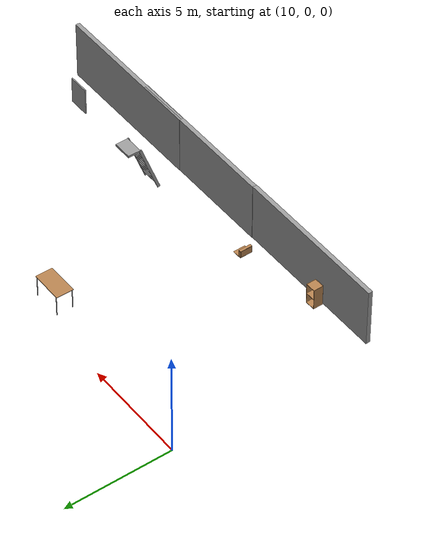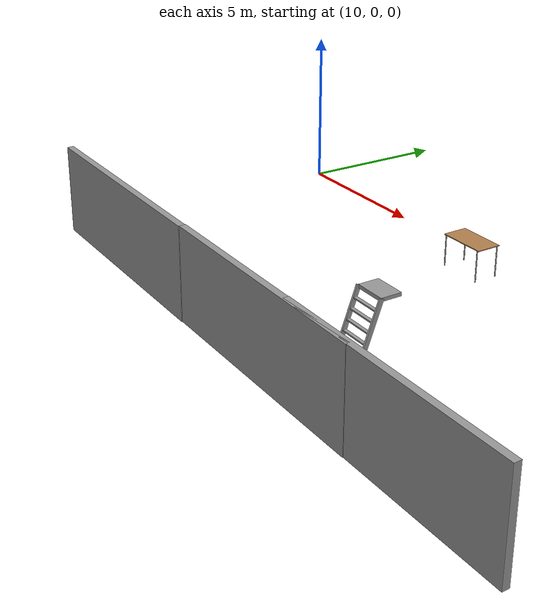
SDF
<sdf version="1.6">
 <world name="factory">
  <model name="ladder_70deg_0rails">
   <static>1</static>
   <link name="step0">
    <pose>0 0.097059 0.266667 0 -0 0</pose>
    <inertial>
     <mass>9.75482</mass>
     <inertia>
      <ixx>0.00957124</ixx>
      <iyy>0.65963</iyy>
      <izz>0.666842</izz>
      <ixy>0</ixy>
      <ixz>0</ixz>
      <iyz>0</iyz>
     </inertia>
    </inertial>
    <collision name="collision"><geometry><box><size>0.9 0.1016 0.0381</size></box></geometry></collision>
    <visual name="visual">
     <geometry><box><size>0.9 0.1016 0.0381</size></box></geometry>
     <material>
      <script><uri>file://media/materials/scripts/gazebo.material</uri><name>Gazebo/Grey</name></script>
     </material>
    </visual>
   </link>
   <link name="step1">
    <pose>0 0.194117 0.533333 0 -0 0</pose>
    <inertial>
     <mass>9.75482</mass>
     <inertia>
      <ixx>0.00957124</ixx>
      <iyy>0.65963</iyy>
      <izz>0.666842</izz>
      <ixy>0</ixy>
      <ixz>0</ixz>
      <iyz>0</iyz>
     </inertia>
    </inertial>
    <collision name="collision"><geometry><box><size>0.9 0.1016 0.0381</size></box></geometry></collision>
    <visual name="visual">
     <geometry><box><size>0.9 0.1016 0.0381</size></box></geometry>
     <material>
      <script><uri>file://media/materials/scripts/gazebo.material</uri><name>Gazebo/Grey</name></script>
     </material>
    </visual>
   </link>
   <link name="step2">
    <pose>0 0.291176 0.8 0 -0 0</pose>
    <inertial>
     <mass>9.75482</mass>
     <inertia>
      <ixx>0.00957124</ixx>
      <iyy>0.65963</iyy>
      <izz>0.666842</izz>
      <ixy>0</ixy>
      <ixz>0</ixz>
      <iyz>0</iyz>
     </inertia>
    </inertial>
    <collision name="collision"><geometry><box><size>0.9 0.1016 0.0381</size></box></geometry></collision>
    <visual name="visual">
     <geometry><box><size>0.9 0.1016 0.0381</size></box></geometry>
     <material>
      <script><uri>file://media/materials/scripts/gazebo.material</uri><name>Gazebo/Grey</name></script>
     </material>
    </visual>
   </link>
   <link name="step3">
    <pose>0 0.388235 1.06667 0 -0 0</pose>
    <inertial>
     <mass>9.75482</mass>
     <inertia>
      <ixx>0.00957124</ixx>
      <iyy>0.65963</iyy>
      <izz>0.666842</izz>
      <ixy>0</ixy>
      <ixz>0</ixz>
      <iyz>0</iyz>
     </inertia>
    </inertial>
    <collision name="collision"><geometry><box><size>0.9 0.1016 0.0381</size></box></geometry></collision>
    <visual name="visual">
     <geometry><box><size>0.9 0.1016 0.0381</size></box></geometry>
     <material>
      <script><uri>file://media/materials/scripts/gazebo.material</uri><name>Gazebo/Grey</name></script>
     </material>
    </visual>
   </link>
   <link name="step4">
    <pose>0 0.485294 1.33333 0 -0 0</pose>
    <inertial>
     <mass>9.75482</mass>
     <inertia>
      <ixx>0.00957124</ixx>
      <iyy>0.65963</iyy>
      <izz>0.666842</izz>
      <ixy>0</ixy>
      <ixz>0</ixz>
      <iyz>0</iyz>
     </inertia>
    </inertial>
    <collision name="collision"><geometry><box><size>0.9 0.1016 0.0381</size></box></geometry></collision>
    <visual name="visual">
     <geometry><box><size>0.9 0.1016 0.0381</size></box></geometry>
     <material>
      <script><uri>file://media/materials/scripts/gazebo.material</uri><name>Gazebo/Grey</name></script>
     </material>
    </visual>
   </link>
   <link name="step5">
    <pose>0 0.582352 1.6 0 -0 0</pose>
    <inertial>
     <mass>9.75482</mass>
     <inertia>
      <ixx>0.00957124</ixx>
      <iyy>0.65963</iyy>
      <izz>0.666842</izz>
      <ixy>0</ixy>
      <ixz>0</ixz>
      <iyz>0</iyz>
     </inertia>
    </inertial>
    <collision name="collision"><geometry><box><size>0.9 0.1016 0.0381</size></box></geometry></collision>
    <visual name="visual">
     <geometry><box><size>0.9 0.1016 0.0381</size></box></geometry>
     <material>
      <script><uri>file://media/materials/scripts/gazebo.material</uri><name>Gazebo/Grey</name></script>
     </material>
    </visual>
   </link>
   <link name="step6">
    <pose>0 0.679411 1.86667 0 -0 0</pose>
    <inertial>
     <mass>9.75482</mass>
     <inertia>
      <ixx>0.00957124</ixx>
      <iyy>0.65963</iyy>
      <izz>0.666842</izz>
      <ixy>0</ixy>
      <ixz>0</ixz>
      <iyz>0</iyz>
     </inertia>
    </inertial>
    <collision name="collision"><geometry><box><size>0.9 0.1016 0.0381</size></box></geometry></collision>
    <visual name="visual">
     <geometry><box><size>0.9 0.1016 0.0381</size></box></geometry>
     <material>
      <script><uri>file://media/materials/scripts/gazebo.material</uri><name>Gazebo/Grey</name></script>
     </material>
    </visual>
   </link>
   <link name="step7">
    <pose>0 0.77647 2.13333 0 -0 0</pose>
    <inertial>
     <mass>9.75482</mass>
     <inertia>
      <ixx>0.00957124</ixx>
      <iyy>0.65963</iyy>
      <izz>0.666842</izz>
      <ixy>0</ixy>
      <ixz>0</ixz>
      <iyz>0</iyz>
     </inertia>
    </inertial>
    <collision name="collision"><geometry><box><size>0.9 0.1016 0.0381</size></box></geometry></collision>
    <visual name="visual">
     <geometry><box><size>0.9 0.1016 0.0381</size></box></geometry>
     <material>
      <script><uri>file://media/materials/scripts/gazebo.material</uri><name>Gazebo/Grey</name></script>
     </material>
    </visual>
   </link>
   <link name="landing">
    <pose>0 1.17353 2.4 0 -0 0</pose>
    <inertial>
     <mass>57.6072</mass>
     <inertia><ixx>1.73518</ixx><iyy>3.89545</iyy><izz>5.6167</izz><ixy>0</ixy><ixz>0</ixz><iyz>0</iyz></inertia>
    </inertial>
    <collision name="collision"><geometry><box><size>0.9 0.6 0.1016</size></box></geometry></collision>
    <visual name="visual">
     <geometry><box><size>0.9 0.6 0.1016</size></box></geometry>
     <material>
      <script><uri>file://media/materials/scripts/gazebo.material</uri><name>Gazebo/Grey</name></script>
     </material>
    </visual>
   </link>
   <link name="left_side_wall">
    <pose>-0.45 0.436764 1.2 1.22173 -0 0</pose>
    <collision name="collision"><geometry><box><size>0.0508 2.63403 0.13</size></box></geometry></collision>
    <visual name="visual">
     <geometry><box><size>0.0508 2.63403 0.13</size></box></geometry>
     <material>
      <script><uri>file://media/materials/scripts/gazebo.material</uri><name>Gazebo/Grey</name></script>
     </material>
    </visual>
   </link>
   <link name="right_side_wall">
    <pose>0.45 0.436764 1.2 1.22173 -0 0</pose>
    <collision name="collision"><geometry><box><size>0.0508 2.63403 0.13</size></box></geometry></collision>
    <visual name="visual">
     <geometry><box><size>0.0508 2.63403 0.13</size></box></geometry>
     <material>
      <script><uri>file://media/materials/scripts/gazebo.material</uri><name>Gazebo/Grey</name></script>
     </material>
    </visual>
   </link>
   <pose>22.7475 -8.13571 0 0 -0 0</pose>
  </model>
  <model name="grey_wall_clone_0">
   <static>1</static>
   <link name="link">
    <pose>0 0 1.4 0 -0 0</pose>
    <collision name="collision"><geometry><box><size>7.5 0.2 2.8</size></box></geometry></collision>
    <visual name="visual">
     <cast_shadows>0</cast_shadows>
     <geometry><box><size>7.5 0.2 2.8</size></box></geometry>
     <material>
      <script>
       <uri>model://grey_wall/materials/scripts</uri>
       <uri>model://grey_wall/materials/textures</uri>
       <name>vrc/grey_wall</name>
      </script>
     </material>
    </visual>
   </link>
   <pose>13.8347 -9.52636 0 0 -0 0</pose>
  </model>
  <model name="grey_wall_clone_1">
   <static>1</static>
   <link name="link">
    <pose>0 0 1.4 0 -0 0</pose>
    <collision name="collision"><geometry><box><size>7.5 0.2 2.8</size></box></geometry></collision>
    <visual name="visual">
     <cast_shadows>0</cast_shadows>
     <geometry><box><size>7.5 0.2 2.8</size></box></geometry>
     <material>
      <script>
       <uri>model://grey_wall/materials/scripts</uri>
       <uri>model://grey_wall/materials/textures</uri>
       <name>vrc/grey_wall</name>
      </script>
     </material>
    </visual>
   </link>
   <pose>21.3028 -9.50574 0 0 -0 0</pose>
  </model>
  <model name="grey_wall_clone_2">
   <static>1</static>
   <link name="link">
    <pose>0 0 1.4 0 -0 0</pose>
    <collision name="collision"><geometry><box><size>7.5 0.2 2.8</size></box></geometry></collision>
    <visual name="visual">
     <cast_shadows>0</cast_shadows>
     <geometry><box><size>7.5 0.2 2.8</size></box></geometry>
     <material>
      <script>
       <uri>model://grey_wall/materials/scripts</uri>
       <uri>model://grey_wall/materials/textures</uri>
       <name>vrc/grey_wall</name>
      </script>
     </material>
    </visual>
   </link>
   <pose>26.2939 -9.49059 0 0 -0 0</pose>
  </model>
  <model name="unit_box">
   <pose>28.3607 -8.33661 0.535136 2e-06 4e-06 0.000125</pose>
   <link name="link">
    <inertial>
     <mass>1</mass>
     <inertia>
      <ixx>0.166667</ixx>
      <ixy>0</ixy>
      <ixz>0</ixz>
      <iyy>0.166667</iyy>
      <iyz>0</iyz>
      <izz>0.166667</izz>
     </inertia>
    </inertial>
    <collision name="collision"><geometry><box><size>1 0.056403 1.31218</size></box></geometry></collision>
    <visual name="visual">
     <geometry><box><size>1 0.056403 1.31218</size></box></geometry>
     <material>
      <script><name>Gazebo/Grey</name><uri>file://media/materials/scripts/gazebo.material</uri></script>
     </material>
    </visual>
   </link>
  </model>
  <model name="cabinet">
   <static>1</static>
   <link name="cabinet_bottom_plate">
    <inertial>
     <pose>0 0 -1 0 -0 0</pose>
     <inertia><ixx>2.05</ixx><ixy>0</ixy><ixz>0</ixz><iyy>2.05</iyy><iyz>0</iyz><izz>2.05</izz></inertia>
     <mass>25</mass>
    </inertial>
    <collision name="cabinet_bottom_plate_geom">
     <pose>0 0 0.01 0 -0 0</pose>
     <geometry><box><size>0.45 0.45 0.02</size></box></geometry>
    </collision>
    <visual name="cabinet_bottom_plate_geom_visual">
     <pose>0 0 0.01 0 -0 0</pose>
     <geometry><box><size>0.45 0.45 0.02</size></box></geometry>
     <material>
      <script><uri>file://media/materials/scripts/gazebo.material</uri><name>Gazebo/Wood</name></script>
     </material>
    </visual>
    <collision name="cabinet_bottom_plate_geom_cabinet_back_plate">
     <pose>0.235 0 0.51 0 -0 0</pose>
     <geometry><box><size>0.02 0.45 1.02</size></box></geometry>
    </collision>
    <visual name="cabinet_bottom_plate_geom_cabinet_back_plate_visual">
     <pose>0.235 0 0.51 0 -0 0</pose>
     <geometry><box><size>0.02 0.45 1.02</size></box></geometry>
     <material>
      <script><uri>file://media/materials/scripts/gazebo.material</uri><name>Gazebo/Wood</name></script>
     </material>
    </visual>
    <collision name="cabinet_bottom_plate_geom_cabinet_left_plate">
     <pose>0 0.235 0.51 0 -0 0</pose>
     <geometry><box><size>0.45 0.02 1.02</size></box></geometry>
    </collision>
    <visual name="cabinet_bottom_plate_geom_cabinet_left_plate_visual">
     <pose>0 0.235 0.51 0 -0 0</pose>
     <geometry><box><size>0.45 0.02 1.02</size></box></geometry>
     <material>
      <script><uri>file://media/materials/scripts/gazebo.material</uri><name>Gazebo/Wood</name></script>
     </material>
    </visual>
    <collision name="cabinet_bottom_plate_geom_cabinet_middle_plate">
     <pose>0 0 0.51 0 -0 0</pose>
     <geometry><box><size>0.45 0.45 0.02</size></box></geometry>
    </collision>
    <visual name="cabinet_bottom_plate_geom_cabinet_middle_plate_visual">
     <pose>0 0 0.51 0 -0 0</pose>
     <geometry><box><size>0.45 0.45 0.02</size></box></geometry>
     <material>
      <script><uri>file://media/materials/scripts/gazebo.material</uri><name>Gazebo/Wood</name></script>
     </material>
    </visual>
    <collision name="cabinet_bottom_plate_geom_cabinet_right_plate">
     <pose>0 -0.235 0.51 0 -0 0</pose>
     <geometry><box><size>0.45 0.02 1.02</size></box></geometry>
    </collision>
    <visual name="cabinet_bottom_plate_geom_cabinet_right_plate_visual">
     <pose>0 -0.235 0.51 0 -0 0</pose>
     <geometry><box><size>0.45 0.02 1.02</size></box></geometry>
     <material>
      <script><uri>file://media/materials/scripts/gazebo.material</uri><name>Gazebo/Wood</name></script>
     </material>
    </visual>
    <collision name="cabinet_bottom_plate_geom_cabinet_top_plate">
     <pose>0 0 1.01 0 -0 0</pose>
     <geometry><box><size>0.45 0.45 0.02</size></box></geometry>
    </collision>
    <visual name="cabinet_bottom_plate_geom_cabinet_top_plate_visual">
     <pose>0 0 1.01 0 -0 0</pose>
     <geometry><box><size>0.45 0.45 0.02</size></box></geometry>
     <material>
      <script><uri>file://media/materials/scripts/gazebo.material</uri><name>Gazebo/Wood</name></script>
     </material>
    </visual>
   </link>
   <pose>13.0394 -9.13497 0.037072 0 0 -1.55676</pose>
  </model>
  <model name="wooden_case">
   <link name="base">
    <pose>0 0 0.024 0 -0 0</pose>
    <inertial>
     <pose>-0.022184 0 0.171592 0 -0 0</pose>
     <mass>3.96264</mass>
     <inertia>
      <ixx>0.213536</ixx>
      <ixy>0</ixy>
      <ixz>0.000779377</ixz>
      <iyy>0.0708943</iyy>
      <iyz>0</iyz>
      <izz>0.154604</izz>
     </inertia>
    </inertial>
    <collision name="collision_back">
     <pose>-0.053975 0 0.1778 0 -0 0</pose>
     <geometry><box><size>0.01905 0.5461 0.3175</size></box></geometry>
     <surface>
      <contact>
       <poissons_ratio>0.347</poissons_ratio>
       <elastic_modulus>8.8e+09</elastic_modulus>
       <ode><kp>100000</kp><kd>100</kd><max_vel>100</max_vel><min_depth>0.001</min_depth></ode>
      </contact>
      <friction>
       <torsional>
        <coefficient>1</coefficient>
        <use_patch_radius>0</use_patch_radius>
        <surface_radius>0.01</surface_radius>
       </torsional>
      </friction>
     </surface>
    </collision>
    <visual name="visual_back">
     <pose>-0.053975 0 0.1778 0 -0 0</pose>
     <geometry><box><size>0.01905 0.5461 0.3175</size></box></geometry>
     <material>
      <script><uri>file://media/materials/scripts/gazebo.material</uri><name>Gazebo/Wood</name></script>
     </material>
    </visual>
    <collision name="collision_bottom">
     <pose>0 0 0.009525 0 -0 0</pose>
     <geometry><box><size>0.127 0.5842 0.01905</size></box></geometry>
     <surface>
      <contact>
       <poissons_ratio>0.347</poissons_ratio>
       <elastic_modulus>8.8e+09</elastic_modulus>
       <ode><kp>100000</kp><kd>100</kd><max_vel>100</max_vel><min_depth>0.001</min_depth></ode>
      </contact>
      <friction>
       <torsional>
        <coefficient>1</coefficient>
        <use_patch_radius>0</use_patch_radius>
        <surface_radius>0.01</surface_radius>
       </torsional>
      </friction>
     </surface>
    </collision>
    <visual name="visual_bottom">
     <pose>0 0 0.009525 0 -0 0</pose>
     <geometry><box><size>0.127 0.5842 0.01905</size></box></geometry>
     <material>
      <script><uri>file://media/materials/scripts/gazebo.material</uri><name>Gazebo/Wood</name></script>
     </material>
    </visual>
    <collision name="collision_top">
     <pose>0 0 0.346075 0 -0 0</pose>
     <geometry><box><size>0.127 0.5842 0.01905</size></box></geometry>
     <surface>
      <contact>
       <poissons_ratio>0.347</poissons_ratio>
       <elastic_modulus>8.8e+09</elastic_modulus>
       <ode><kp>100000</kp><kd>100</kd><max_vel>100</max_vel><min_depth>0.001</min_depth></ode>
      </contact>
      <friction>
       <torsional>
        <coefficient>1</coefficient>
        <use_patch_radius>0</use_patch_radius>
        <surface_radius>0.01</surface_radius>
       </torsional>
      </friction>
     </surface>
    </collision>
    <visual name="visual_top">
     <pose>0 0 0.346075 0 -0 0</pose>
     <geometry><box><size>0.127 0.5842 0.01905</size></box></geometry>
     <material>
      <script><uri>file://media/materials/scripts/gazebo.material</uri><name>Gazebo/Wood</name></script>
     </material>
    </visual>
    <collision name="collision_left">
     <pose>0 -0.282575 0.1778 0 -0 0</pose>
     <geometry><box><size>0.127 0.01905 0.3175</size></box></geometry>
     <surface>
      <contact>
       <poissons_ratio>0.347</poissons_ratio>
       <elastic_modulus>8.8e+09</elastic_modulus>
       <ode><kp>100000</kp><kd>100</kd><max_vel>100</max_vel><min_depth>0.001</min_depth></ode>
      </contact>
      <friction>
       <torsional>
        <coefficient>1</coefficient>
        <use_patch_radius>0</use_patch_radius>
        <surface_radius>0.01</surface_radius>
       </torsional>
      </friction>
     </surface>
    </collision>
    <visual name="visual_left">
     <pose>0 -0.282575 0.1778 0 -0 0</pose>
     <geometry><box><size>0.127 0.01905 0.3175</size></box></geometry>
     <material>
      <script><uri>file://media/materials/scripts/gazebo.material</uri><name>Gazebo/Wood</name></script>
     </material>
    </visual>
    <collision name="collision_right">
     <pose>0 0.282575 0.1778 0 -0 0</pose>
     <geometry><box><size>0.127 0.01905 0.3175</size></box></geometry>
     <surface>
      <contact>
       <poissons_ratio>0.347</poissons_ratio>
       <elastic_modulus>8.8e+09</elastic_modulus>
       <ode><kp>100000</kp><kd>100</kd><max_vel>100</max_vel><min_depth>0.001</min_depth></ode>
      </contact>
      <friction>
       <torsional>
        <coefficient>1</coefficient>
        <use_patch_radius>0</use_patch_radius>
        <surface_radius>0.01</surface_radius>
       </torsional>
      </friction>
     </surface>
    </collision>
    <visual name="visual_right">
     <pose>0 0.282575 0.1778 0 -0 0</pose>
     <geometry><box><size>0.127 0.01905 0.3175</size></box></geometry>
     <material>
      <script><uri>file://media/materials/scripts/gazebo.material</uri><name>Gazebo/Wood</name></script>
     </material>
    </visual>
    <collision name="collision_block_left">
     <pose>0.0095 -0.2151 -0.012 0 -0 0</pose>
     <geometry><box><size>0.108 0.05 0.024</size></box></geometry>
     <surface>
      <contact>
       <poissons_ratio>0.347</poissons_ratio>
       <elastic_modulus>8.8e+09</elastic_modulus>
       <ode><kp>100000</kp><kd>100</kd><max_vel>100</max_vel><min_depth>0.001</min_depth></ode>
      </contact>
      <friction>
       <torsional>
        <coefficient>1</coefficient>
        <use_patch_radius>0</use_patch_radius>
        <surface_radius>0.01</surface_radius>
       </torsional>
      </friction>
     </surface>
    </collision>
    <visual name="visual_block_left">
     <pose>0.0095 -0.2151 -0.012 0 -0 0</pose>
     <geometry><box><size>0.108 0.05 0.024</size></box></geometry>
     <material>
      <script><uri>file://media/materials/scripts/gazebo.material</uri><name>Gazebo/Wood</name></script>
     </material>
    </visual>
    <collision name="collision_block_right">
     <pose>0.0095 0.2151 -0.012 0 -0 0</pose>
     <geometry><box><size>0.108 0.05 0.024</size></box></geometry>
     <surface>
      <contact>
       <poissons_ratio>0.347</poissons_ratio>
       <elastic_modulus>8.8e+09</elastic_modulus>
       <ode><kp>100000</kp><kd>100</kd><max_vel>100</max_vel><min_depth>0.001</min_depth></ode>
      </contact>
      <friction>
       <torsional>
        <coefficient>1</coefficient>
        <use_patch_radius>0</use_patch_radius>
        <surface_radius>0.01</surface_radius>
       </torsional>
      </friction>
     </surface>
    </collision>
    <visual name="visual_block_right">
     <pose>0.0095 0.2151 -0.012 0 -0 0</pose>
     <geometry><box><size>0.108 0.05 0.024</size></box></geometry>
     <material>
      <script><uri>file://media/materials/scripts/gazebo.material</uri><name>Gazebo/Wood</name></script>
     </material>
    </visual>
   </link>
   <link name="lid">
    <pose>0.243775 0 0.009525 0 -0 0</pose>
    <inertial>
     <mass>1.97874</mass>
     <inertia>
      <ixx>0.0563367</ixx>
      <ixy>0</ixy>
      <ixz>0</ixz>
      <iyy>0.020911</iyy>
      <iyz>0</iyz>
      <izz>0.0771281</izz>
     </inertia>
    </inertial>
    <collision name="collision">
     <geometry><box><size>0.3556 0.5842 0.01905</size></box></geometry>
     <surface>
      <contact>
       <poissons_ratio>0.347</poissons_ratio>
       <elastic_modulus>8.8e+09</elastic_modulus>
       <ode><kp>100000</kp><kd>100</kd><max_vel>100</max_vel><min_depth>0.001</min_depth></ode>
      </contact>
      <friction>
       <torsional>
        <coefficient>1</coefficient>
        <use_patch_radius>0</use_patch_radius>
        <surface_radius>0.01</surface_radius>
       </torsional>
      </friction>
     </surface>
    </collision>
    <visual name="visual">
     <geometry><box><size>0.3556 0.5842 0.01905</size></box></geometry>
     <material>
      <script><uri>file://media/materials/scripts/gazebo.material</uri><name>Gazebo/Wood</name></script>
     </material>
    </visual>
    <visual name="tee_nut_1">
     <pose>0.122 -0.216 0 0 -0 0</pose>
     <geometry><cylinder><radius>0.00635</radius><length>0.0192405</length></cylinder></geometry>
     <material>
      <script><uri>file://media/materials/scripts/gazebo.material</uri><name>Gazebo/Grey</name></script>
     </material>
    </visual>
    <visual name="tee_nut_2">
     <pose>0.122 -0.088 0 0 -0 0</pose>
     <geometry><cylinder><radius>0.00635</radius><length>0.0192405</length></cylinder></geometry>
     <material>
      <script><uri>file://media/materials/scripts/gazebo.material</uri><name>Gazebo/Grey</name></script>
     </material>
    </visual>
    <visual name="tee_nut_3">
     <pose>0.122 0.088 0 0 -0 0</pose>
     <geometry><cylinder><radius>0.00635</radius><length>0.0192405</length></cylinder></geometry>
     <material>
      <script><uri>file://media/materials/scripts/gazebo.material</uri><name>Gazebo/Grey</name></script>
     </material>
    </visual>
    <visual name="tee_nut_4">
     <pose>0.122 0.216 0 0 -0 0</pose>
     <geometry><cylinder><radius>0.00635</radius><length>0.0192405</length></cylinder></geometry>
     <material>
      <script><uri>file://media/materials/scripts/gazebo.material</uri><name>Gazebo/Grey</name></script>
     </material>
    </visual>
   </link>
   <joint name="lid_hinge" type="revolute">
    <pose>-0.1778 0 0.01905 0 -0 0</pose>
    <parent>base</parent>
    <child>lid</child>
    <axis>
     <xyz>0 1 0</xyz>
     <limit><upper>0.523599</upper><lower>-1.5708</lower></limit>
     <use_parent_model_frame>0</use_parent_model_frame>
     <dynamics><spring_reference>0</spring_reference><spring_stiffness>0</spring_stiffness></dynamics>
    </axis>
   </joint>
   <pose>16.9032 -8.59917 -0.001057 0 -0.000439 -0.000316</pose>
  </model>
  <model name="table">
   <static>1</static>
   <link name="link">
    <collision name="surface">
     <pose>0 0 1 0 -0 0</pose>
     <geometry><box><size>1.5 0.8 0.03</size></box></geometry>
     <surface><friction><ode><mu>0.6</mu><mu2>0.6</mu2></ode></friction></surface>
    </collision>
    <visual name="visual1">
     <pose>0 0 1 0 -0 0</pose>
     <geometry><box><size>1.5 0.8 0.03</size></box></geometry>
     <material>
      <script><uri>file://media/materials/scripts/gazebo.material</uri><name>Gazebo/Wood</name></script>
     </material>
    </visual>
    <collision name="front_left_leg">
     <pose>0.68 0.38 0.5 0 -0 0</pose>
     <geometry><cylinder><radius>0.02</radius><length>1</length></cylinder></geometry>
    </collision>
    <visual name="front_left_leg">
     <pose>0.68 0.38 0.5 0 -0 0</pose>
     <geometry><cylinder><radius>0.02</radius><length>1</length></cylinder></geometry>
     <material>
      <script><uri>file://media/materials/scripts/gazebo.material</uri><name>Gazebo/Grey</name></script>
     </material>
    </visual>
    <collision name="front_right_leg">
     <pose>0.68 -0.38 0.5 0 -0 0</pose>
     <geometry><cylinder><radius>0.02</radius><length>1</length></cylinder></geometry>
    </collision>
    <visual name="front_right_leg">
     <pose>0.68 -0.38 0.5 0 -0 0</pose>
     <geometry><cylinder><radius>0.02</radius><length>1</length></cylinder></geometry>
     <material>
      <script><uri>file://media/materials/scripts/gazebo.material</uri><name>Gazebo/Grey</name></script>
     </material>
    </visual>
    <collision name="back_right_leg">
     <pose>-0.68 -0.38 0.5 0 -0 0</pose>
     <geometry><cylinder><radius>0.02</radius><length>1</length></cylinder></geometry>
    </collision>
    <visual name="back_right_leg">
     <pose>-0.68 -0.38 0.5 0 -0 0</pose>
     <geometry><cylinder><radius>0.02</radius><length>1</length></cylinder></geometry>
     <material>
      <script><uri>file://media/materials/scripts/gazebo.material</uri><name>Gazebo/Grey</name></script>
     </material>
    </visual>
    <collision name="back_left_leg">
     <pose>-0.68 0.38 0.5 0 -0 0</pose>
     <geometry><cylinder><radius>0.02</radius><length>1</length></cylinder></geometry>
    </collision>
    <visual name="back_left_leg">
     <pose>-0.68 0.38 0.5 0 -0 0</pose>
     <geometry><cylinder><radius>0.02</radius><length>1</length></cylinder></geometry>
     <material>
      <script><uri>file://media/materials/scripts/gazebo.material</uri><name>Gazebo/Grey</name></script>
     </material>
    </visual>
   </link>
   <pose>19.256 -0.907717 0 0 -0 0</pose>
  </model>
 </world>
</sdf>
